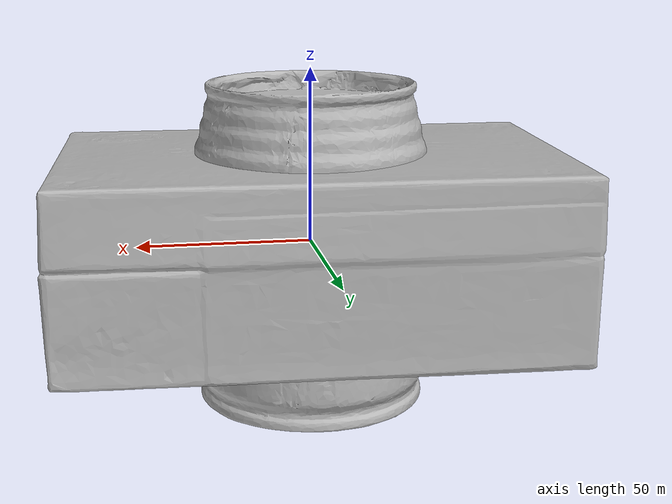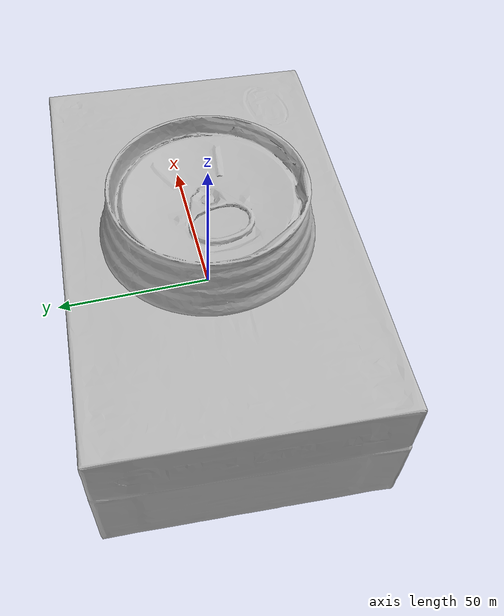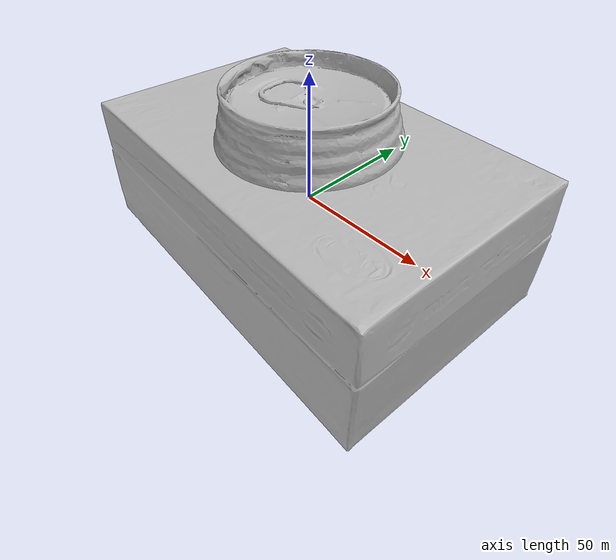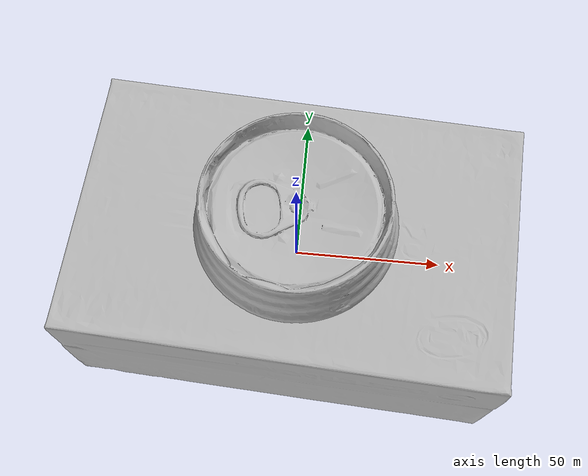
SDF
<sdf version="1.4">
 <world name="default">
  <light name="light1" type="point">
   <pose>0 0 1 0 0 0</pose>
   <diffuse>3 3 3 1</diffuse>
   <specular>3 3 3 1</specular>
  </light>
  <light name="light2" type="point">
   <pose>0 0.5 2 0 0 0</pose>
   <diffuse>1 1 1 1</diffuse>
   <specular>1 1 1 1</specular>
  </light>
  <light name="light3" type="point">
   <pose>0 0.5 2 0 0 0</pose>
   <diffuse>3 3 3 1</diffuse>
   <specular>3 3 3 1</specular>
  </light>
  <scene><ambient>0.7 0.7 0.7</ambient></scene>
  <model name="box1">
   <link name="link_box1">
    <collision name="default">
     <geometry>
      <mesh><uri>model://realsense_box/collision_meshes/collision.obj</uri><scale>1.0 1.0 1.0</scale></mesh>
     </geometry>
     <surface>
      <friction><ode><mu>0.5</mu><mu2>0.5</mu2></ode></friction>
      <contact><ode><max_vel>0</max_vel><min_depth>0.0001</min_depth><kp>1e8</kp></ode></contact>
     </surface>
    </collision>
    <visual name="default">
     <geometry>
      <mesh><uri>model://realsense_box/visual_meshes/visual.dae</uri><scale>1.0 1.0 1.0</scale></mesh>
     </geometry>
    </visual>
    <inertial>
     <mass>0.9783616662025452</mass>
     <pose>4.0744838770478964e-05 8.587493357481435e-05 -2.4153794583980925e-05 -0.00012602841694551038 -0.006358939977979225 0.005012324824875736</pose>
     <inertia>
      <ixx>0.0009306729</ixx>
      <iyy>0.0019425071</iyy>
      <izz>0.002403061</izz>
      <ixy>0</ixy>
      <ixz>0</ixz>
      <iyz>0</iyz>
     </inertia>
    </inertial>
   </link>
   <pose>0.007332444190979004 -0.27477574348449707 0.027316005900502205 -4.3517800643319805e-08 -1.2129134471786056e-08 3.0766637107507817</pose>
  </model>
  <model name="box2">
   <link name="link_box2">
    <collision name="default">
     <geometry>
      <mesh><uri>model://wooden_puzzle2/collision_meshes/collision.obj</uri><scale>1.0 1.0 1.0</scale></mesh>
     </geometry>
     <surface>
      <friction><ode><mu>0.5</mu><mu2>0.5</mu2></ode></friction>
      <contact><ode><max_vel>0</max_vel><min_depth>0.0001</min_depth><kp>1e8</kp></ode></contact>
     </surface>
    </collision>
    <visual name="default">
     <geometry>
      <mesh><uri>model://wooden_puzzle2/visual_meshes/visual.dae</uri><scale>1.0 1.0 1.0</scale></mesh>
     </geometry>
    </visual>
    <inertial>
     <mass>0.024048319086432457</mass>
     <pose>2.7402536943554878e-05 4.997663199901581e-05 6.587122334167361e-05 -0.19203048535200862 0.6112800928970119 -0.6338660341545117</pose>
     <inertia>
      <ixx>4.470326e-06</ixx>
      <iyy>4.593511e-06</iyy>
      <izz>4.528165e-06</izz>
      <ixy>0</ixy>
      <ixz>0</ixz>
      <iyz>0</iyz>
     </inertia>
    </inertial>
   </link>
   <pose>0.1868886500597 -0.03630353882908821 0.01691773720085621 0.020848411910100895 0.0007211834886643775 0.1596608184458492</pose>
  </model>
  <model name="can1">
   <link name="link_can1">
    <collision name="default">
     <geometry>
      <mesh><uri>model://redbull/collision_meshes/collision.obj</uri><scale>1.0 1.0 1.0</scale></mesh>
     </geometry>
     <surface>
      <friction><ode><mu>0.5</mu><mu2>0.5</mu2></ode></friction>
      <contact><ode><max_vel>0</max_vel><min_depth>0.0001</min_depth><kp>1e8</kp></ode></contact>
     </surface>
    </collision>
    <visual name="default">
     <geometry>
      <mesh><uri>model://redbull/visual_meshes/visual.dae</uri><scale>1.0 1.0 1.0</scale></mesh>
     </geometry>
    </visual>
    <inertial>
     <mass>0.19214749336242676</mass>
     <pose>-2.212707477156073e-05 -0.00012659536150749773 -0.0006860988214612007 0.0011364686928787662 -0.01080099531045839 0.5859333437288349</pose>
     <inertia>
      <ixx>0.00018066002</ixx>
      <iyy>0.0001808125</iyy>
      <izz>0.0001072083</izz>
      <ixy>0</ixy>
      <ixz>0</ixz>
      <iyz>0</iyz>
     </inertia>
    </inertial>
   </link>
   <pose>0.0867776870727539 -0.12054883688688278 0.04638564586639404 -0.010489188691511692 0.007261261533616927 -1.000760278485814</pose>
  </model>
  <model name="can2">
   <link name="link_can2">
    <collision name="default">
     <geometry>
      <mesh><uri>model://pepsi/collision_meshes/collision.obj</uri><scale>1.0 1.0 1.0</scale></mesh>
     </geometry>
     <surface>
      <friction><ode><mu>0.5</mu><mu2>0.5</mu2></ode></friction>
      <contact><ode><max_vel>0</max_vel><min_depth>0.0001</min_depth><kp>1e8</kp></ode></contact>
     </surface>
    </collision>
    <visual name="default">
     <geometry><mesh><uri>model://pepsi/visual_meshes/visual.dae</uri><scale>1.0 1.0 1.0</scale></mesh></geometry>
    </visual>
    <inertial>
     <mass>0.3079187572002411</mass>
     <pose>-7.5590331107378e-05 2.9931279641459696e-05 -0.0003384356386959553 -0.0010678548810066889 -0.0021735327588889423 0.5674125845328797</pose>
     <inertia>
      <ixx>0.0006134332</ixx>
      <iyy>0.0006129863</iyy>
      <izz>0.0001305606</izz>
      <ixy>0</ixy>
      <ixz>0</ixz>
      <iyz>0</iyz>
     </inertia>
    </inertial>
   </link>
   <pose>0.2673635184764862 -0.02088278718292713 0.0744963213801384 -1.885200235328792e-05 2.2604270690468293e-06 -1.0877227664874998</pose>
  </model>
  <physics type="ode">
   <max_contacts>50</max_contacts>
   <ode>
    <solver><type>quick</type><iters>75</iters></solver>
    <constraints>
     <contact_max_correcting_vel>0</contact_max_correcting_vel>
     <contact_surface_layer>0</contact_surface_layer>
    </constraints>
   </ode>
  </physics>
 </world>
</sdf>
